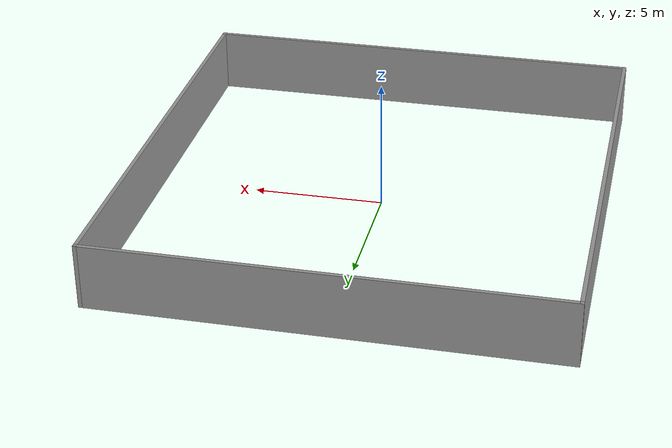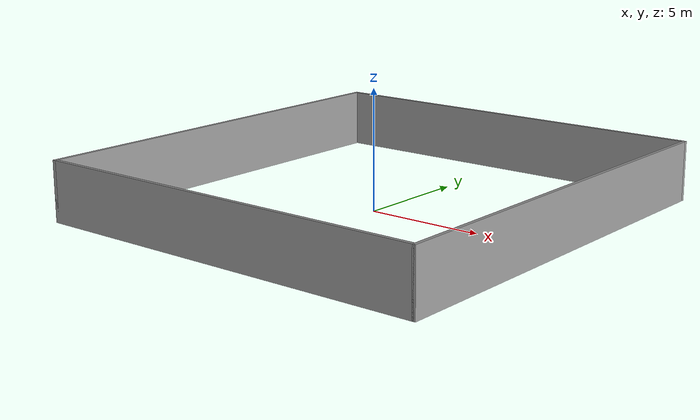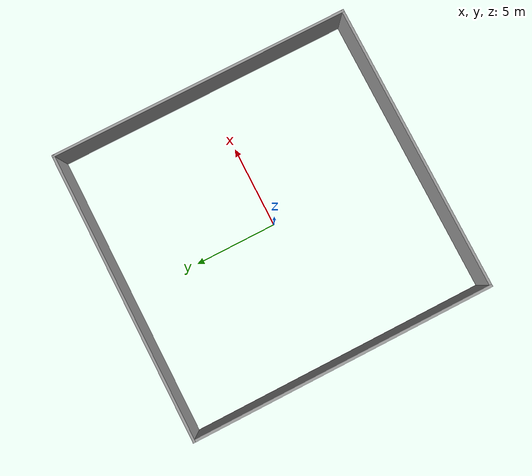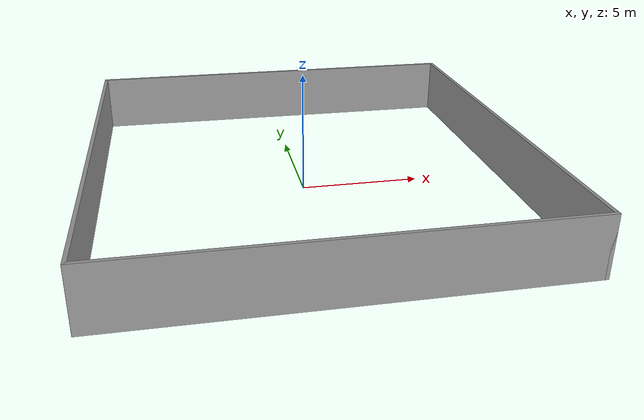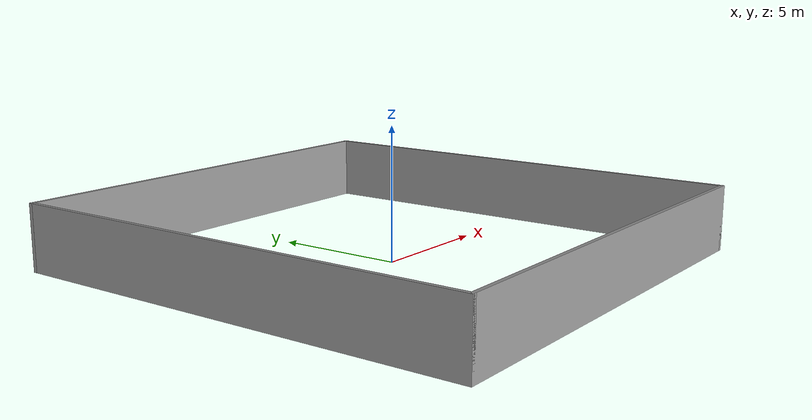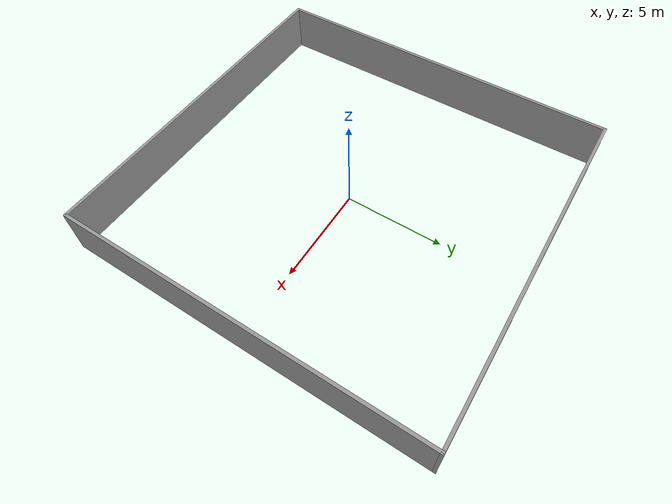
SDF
<?xml version='1.0'?>
<sdf version='1.7'>
  <model name='compoung'>
    <pose>0.134 0.178 0 0 -0 0</pose>
    <link name='Wall_4'>
      <collision name='Wall_4_Collision'>
        <geometry>
          <box>
            <size>18.25 0.15 2.5</size>
          </box>
        </geometry>
        <pose>0 0 1.25 0 -0 0</pose>
      </collision>
      <visual name='Wall_4_Visual'>
        <pose>0 0 1.25 0 -0 0</pose>
        <geometry>
          <box>
            <size>18.25 0.15 2.5</size>
          </box>
        </geometry>
        <material>
          <script>
            <uri>file://media/materials/scripts/gazebo.material</uri>
            <name>Gazebo/Grey</name>
          </script>
          <ambient>1 1 1 1</ambient>
        </material>
        <meta>
          <layer>0</layer>
        </meta>
      </visual>
      <pose>-8.675 -0 0 0 -0 -1.5708</pose>
    </link>
    <link name='Wall_5'>
      <collision name='Wall_5_Collision'>
        <geometry>
          <box>
            <size>17.5 0.15 2.5</size>
          </box>
        </geometry>
        <pose>0 0 1.25 0 -0 0</pose>
      </collision>
      <visual name='Wall_5_Visual'>
        <pose>0 0 1.25 0 -0 0</pose>
        <geometry>
          <box>
            <size>17.5 0.15 2.5</size>
          </box>
        </geometry>
        <material>
          <script>
            <uri>file://media/materials/scripts/gazebo.material</uri>
            <name>Gazebo/Grey</name>
          </script>
          <ambient>1 1 1 1</ambient>
        </material>
        <meta>
          <layer>0</layer>
        </meta>
      </visual>
      <pose>0 -9.05 0 0 -0 0</pose>
    </link>
    <link name='Wall_6'>
      <collision name='Wall_6_Collision'>
        <geometry>
          <box>
            <size>18.25 0.15 2.5</size>
          </box>
        </geometry>
        <pose>0 0 1.25 0 -0 0</pose>
      </collision>
      <visual name='Wall_6_Visual'>
        <pose>0 0 1.25 0 -0 0</pose>
        <geometry>
          <box>
            <size>18.25 0.15 2.5</size>
          </box>
        </geometry>
        <material>
          <script>
            <uri>file://media/materials/scripts/gazebo.material</uri>
            <name>Gazebo/Grey</name>
          </script>
          <ambient>1 1 1 1</ambient>
        </material>
        <meta>
          <layer>0</layer>
        </meta>
      </visual>
      <pose>8.675 -0 0 0 -0 1.5708</pose>
    </link>
    <link name='Wall_7'>
      <collision name='Wall_7_Collision'>
        <geometry>
          <box>
            <size>17.5005 0.15 2.5</size>
          </box>
        </geometry>
        <pose>0 0 1.25 0 -0 0</pose>
      </collision>
      <visual name='Wall_7_Visual'>
        <pose>0 0 1.25 0 -0 0</pose>
        <geometry>
          <box>
            <size>17.5005 0.15 2.5</size>
          </box>
        </geometry>
        <material>
          <script>
            <uri>file://media/materials/scripts/gazebo.material</uri>
            <name>Gazebo/Grey</name>
          </script>
          <ambient>1 1 1 1</ambient>
        </material>
        <meta>
          <layer>0</layer>
        </meta>
      </visual>
      <pose>0 9.05 0 0 -0 3.14159</pose>
    </link>
    <static>1</static>
  </model>
</sdf>
